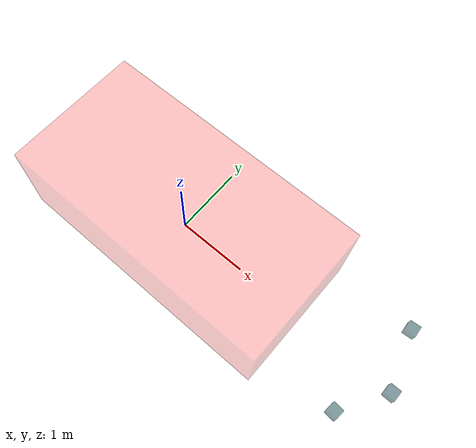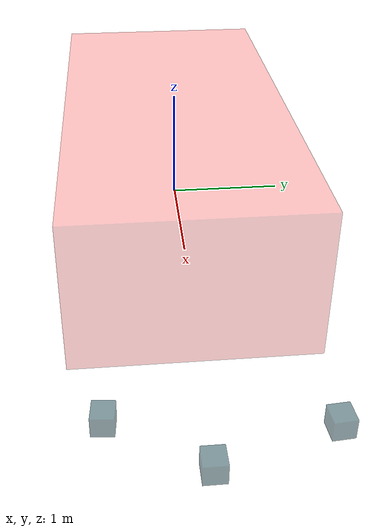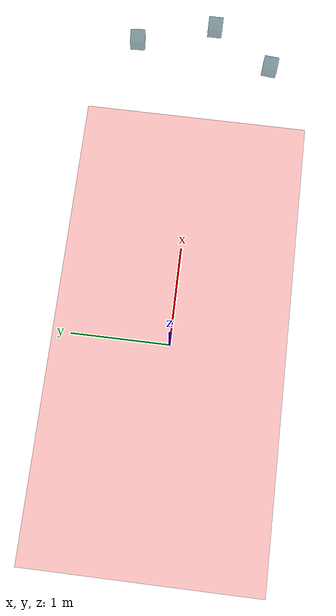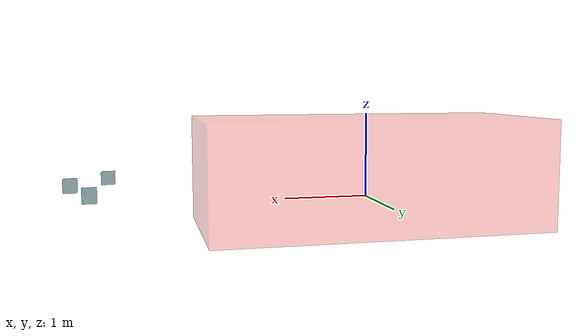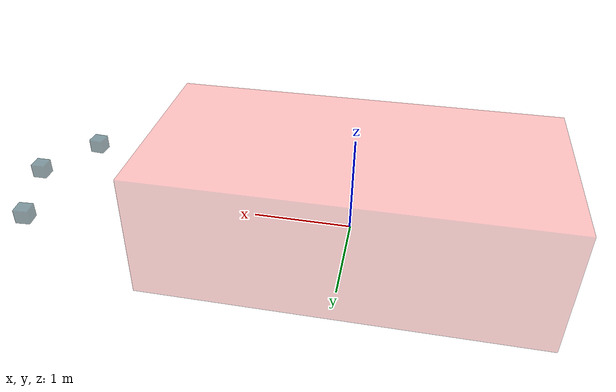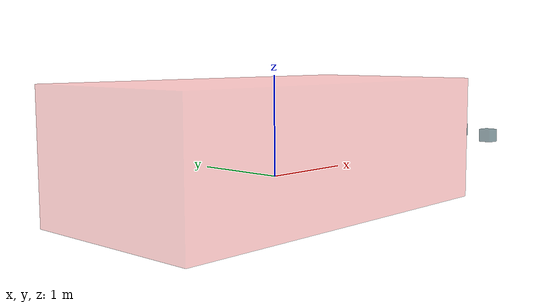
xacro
<?xml version="1.0"?>
<robot name="agv" xmlns:xacro="http://ros.org/wiki/xacro">

<xacro:property name="robot" value="agv" />
<xacro:property name="pi"    value="3.141592" />

<!-- AGV Base Footprint-->
<link name="${robot}_footprint">
    <visual>
        <origin xyz="0 0 0" rpy="0 0 0"/>
        <geometry>
            <box size="0.01 0.01 0.01"/>
        </geometry>
    </visual>
</link>

<!-- AGV Base Link-->
<link name="${robot}_base_link">
    <visual>
        <geometry>
            <box size="4 2 1.3"/>
        </geometry>
        <material name="reddish">
            <color rgba="1 0.2 0.2 0.3"/>
        </material>
    </visual>
</link>
<joint name="${robot}_footprint_2_base_link" type="fixed" >
    <parent link="${robot}_footprint"/>
    <child link="${robot}_base_link"/>
    <origin xyz="0 0 0.3" rpy="0 0 0"/>
</joint>

<!-- Lidar Macro-->
<xacro:macro name="lidar" params="parent suffix *origin">
    <link name="${suffix}">
        <visual>
            <origin xyz="-0.075 -0.075 -0.075" rpy="0 0 0"/>
            <geometry>
                <box size="0.15 0.15 0.15"/>
            </geometry>
            <material name="blue_navy">
                <color rgba="0.0 0.2 0.25 0.5"/>
            </material>
        </visual>
    </link>
    <joint name="${parent}_2_${suffix}" type="fixed" >
        <parent link="${parent}"/>
        <child link="${suffix}"/>
        <xacro:insert_block name="origin" />
    </joint>
</xacro:macro>

<!-- Lidar mounting points-->
<xacro:lidar parent="${robot}_base_link" suffix="${robot}_lidar0">
    <origin xyz="3.5 0 0" rpy="0 0 0"/>
</xacro:lidar>
<xacro:lidar parent="${robot}_base_link" suffix="${robot}_lidar1">
    <origin xyz="3.1 -0.78 0" rpy="0 0 -1.65806"/>
</xacro:lidar>
<xacro:lidar parent="${robot}_base_link" suffix="${robot}_lidar2">
    <origin xyz="-0.5 -0.8 0" rpy="0 0 -1.46608"/>
</xacro:lidar>
<xacro:lidar parent="${robot}_base_link" suffix="${robot}_lidar3">
    <origin xyz="-0.9 0 0" rpy="0 0 -3.12414"/>
</xacro:lidar>
<xacro:lidar parent="${robot}_base_link" suffix="${robot}_lidar4">
    <origin xyz="-0.5 0.8 0" rpy="0 0 1.48353"/>
</xacro:lidar>
<xacro:lidar parent="${robot}_base_link" suffix="${robot}_lidar5">
    <origin xyz="3.1 0.8 0" rpy="0 0 1.64388"/>
</xacro:lidar>

</robot>
